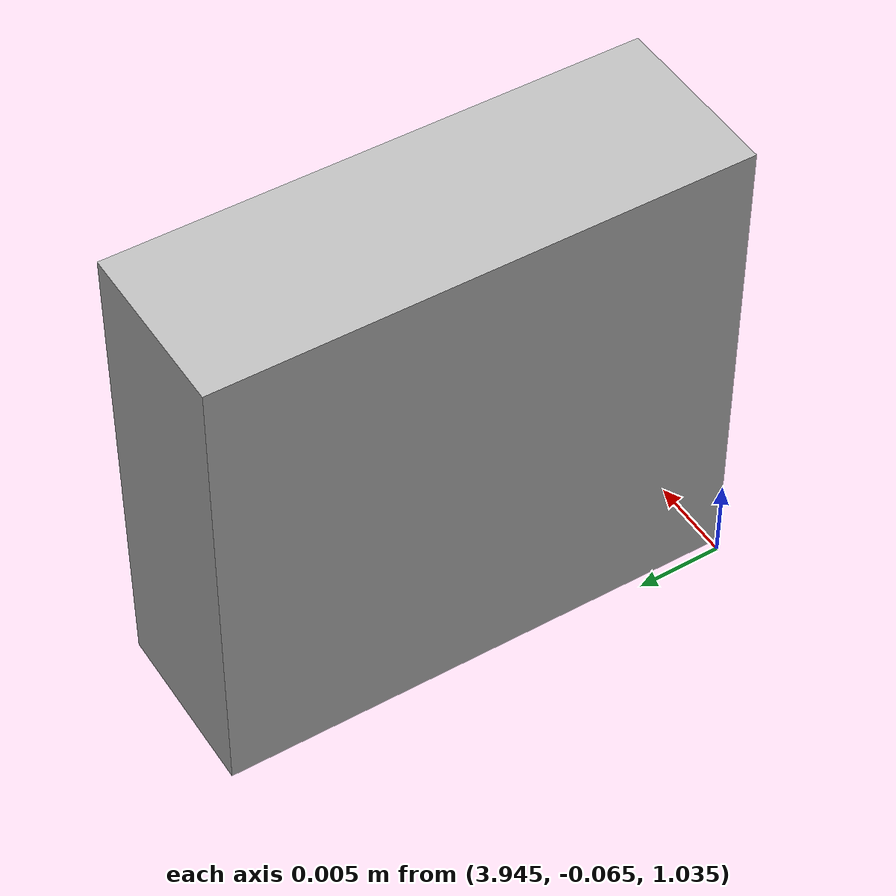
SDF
<?xml version="1.0" encoding="UTF-8"?>
<sdf version='1.9'>
    <model name="fpv_cam">
        <pose>4 0 1.0 0 0.0 3.14</pose>
        <link name="fpv_cam/base_link">
        <pose>0.05 0.05 0.05 0 0 0</pose>
        <inertial>
            <mass>0.1</mass>
            <inertia>
            <ixx>0.000166667</ixx>
            <iyy>0.000166667</iyy>
            <izz>0.000166667</izz>
            </inertia>
        </inertial>
        <collision name="collision">
            <geometry>
            <box>
                <size>0.1 0.1 0.1</size>
            </box>
            </geometry>
        </collision>
        <visual name="visual">
            <geometry>
            <box>
                <size>0.01 0.03 0.028</size>
            </box>
            </geometry>
        </visual>
        <sensor name="camera" type="camera">
            <camera>
            <horizontal_fov>1.745</horizontal_fov>
            <image>
                <width>1280</width>
                <height>720</height>
            </image>
            <clip>
                <near>0.1</near>
                <far>1000</far>
            </clip>
            </camera>
            <always_on>1</always_on>
            <update_rate>30</update_rate>
            <visualize>true</visualize>
            <topic>camera</topic>
        </sensor>
        </link>
    </model>
</sdf>
